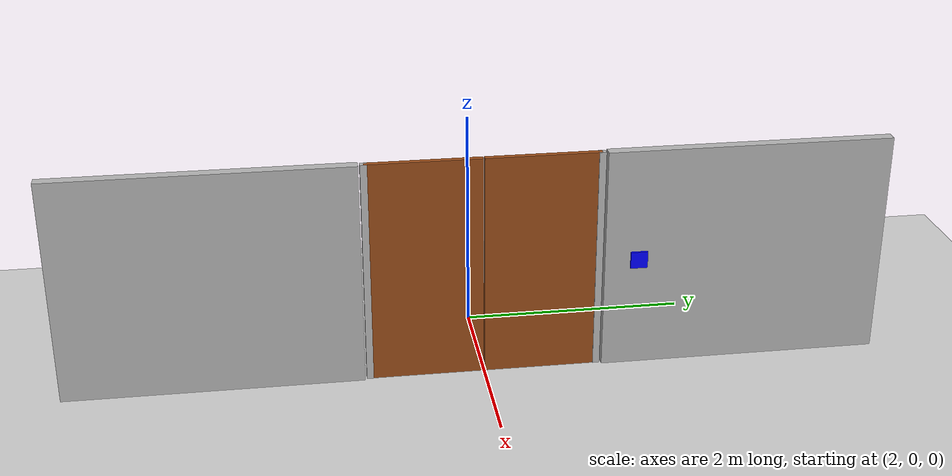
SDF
<sdf version="1.6">
 <world name="default">
  <plugin filename="ignition-gazebo-physics-system" name="ignition::gazebo::systems::Physics"/>
  <plugin filename="ignition-gazebo-user-commands-system" name="ignition::gazebo::systems::UserCommands"/>
  <plugin filename="ignition-gazebo-scene-broadcaster-system" name="ignition::gazebo::systems::SceneBroadcaster"/>
  <plugin filename="ignition-gazebo-sensors-system" name="ignition::gazebo::systems::Sensors"/>
  <plugin filename="ignition-gazebo-contact-system" name="ignition::gazebo::systems::Contact"/>
  <physics type="ode">
   <real_time_update_rate>1000.0</real_time_update_rate>
   <max_step_size>0.001</max_step_size>
   <ode><solver><type>quick</type><iters>50</iters></solver></ode>
  </physics>
  <light name="sun" type="directional">
   <pose>0 0 10 0 0 0</pose>
   <diffuse>0.8 0.8 0.8 1</diffuse>
   <direction>-0.5 0.1 -0.9</direction>
  </light>
  <model name="ground_plane">
   <static>true</static>
   <link name="link">
    <collision name="collision">
     <geometry><plane><normal>0 0 1</normal><size>20 20</size></plane></geometry>
    </collision>
    <visual name="visual">
     <geometry><plane><normal>0 0 1</normal><size>20 20</size></plane></geometry>
     <material><ambient>0.8 0.8 0.8 1</ambient><diffuse>0.8 0.8 0.8 1</diffuse></material>
    </visual>
   </link>
  </model>
  <model name="hallway_wall_left">
   <static>true</static>
   <pose>3.0 -2.35 1.0 0 0 0</pose>
   <link name="link">
    <collision name="col"><geometry><box><size>0.1 2.6 2.0</size></box></geometry></collision>
    <visual name="vis">
     <geometry><box><size>0.1 2.6 2.0</size></box></geometry>
     <material><ambient>0.5 0.5 0.5 1</ambient><diffuse>0.7 0.7 0.7 1</diffuse></material>
    </visual>
   </link>
  </model>
  <model name="hallway_wall_right">
   <static>true</static>
   <pose>3.0 2.3 1.0 0 0 0</pose>
   <link name="link">
    <collision name="col"><geometry><box><size>0.1 2.5 2.0</size></box></geometry></collision>
    <visual name="vis">
     <geometry><box><size>0.1 2.5 2.0</size></box></geometry>
     <material><ambient>0.5 0.5 0.5 1</ambient><diffuse>0.7 0.7 0.7 1</diffuse></material>
    </visual>
   </link>
  </model>
  <model name="handicap_door_right">
   <pose>3.0 -1.005 1.0 0 0 1.5708</pose>
   <link name="door_frame">
    <visual name="v"><geometry><box><size>0.06 0.06 2.0</size></box></geometry></visual>
   </link>
   <link name="door_leaf">
    <inertial><mass>1.0</mass><inertia><ixx>0.1</ixx><iyy>0.1</iyy><izz>0.1</izz></inertia></inertial>
    <collision name="leaf_col">
     <pose>0.5 0 0 0 0 0</pose>
     <geometry><box><size>1.0 0.05 2.0</size></box></geometry>
    </collision>
    <visual name="leaf_vis">
     <pose>0.5 0 0 0 0 0</pose>
     <geometry><box><size>1.0 0.05 2.0</size></box></geometry>
     <material><ambient>0.6 0.3 0.1 1</ambient><diffuse>0.6 0.3 0.1 1</diffuse></material>
    </visual>
   </link>
   <joint name="door_hinge" type="revolute">
    <parent>door_frame</parent>
    <child>door_leaf</child>
    <axis>
     <xyz>0 0 1</xyz>
     <limit><lower>-1.57</lower><upper>0</upper><velocity>0.6</velocity><effort>20</effort></limit>
     <dynamics><damping>5.0</damping><friction>0.1</friction></dynamics>
    </axis>
   </joint>
   <joint name="world_fix" type="fixed"><parent>world</parent><child>door_frame</child></joint>
   <plugin filename="ignition-gazebo-joint-state-publisher-system" name="ignition::gazebo::systems::JointStatePublisher"/>
   <plugin filename="ignition-gazebo-joint-position-controller-system" name="ignition::gazebo::systems::JointPositionController">
    <joint_name>door_hinge</joint_name>
    <topic>/model/handicap_door_right/door_cmd</topic>
    <p_gain>100</p_gain>
    <i_gain>1</i_gain>
    <d_gain>10</d_gain>
   </plugin>
  </model>
  <model name="handicap_left_left">
   <pose>3.0 1.005 1.0 0 0 1.5708</pose>
   <link name="door_frame">
    <visual name="v"><geometry><box><size>0.06 0.06 2.0</size></box></geometry></visual>
   </link>
   <link name="door_leaf">
    <inertial><mass>1.0</mass><inertia><ixx>0.1</ixx><iyy>0.1</iyy><izz>0.1</izz></inertia></inertial>
    <collision name="leaf_col">
     <pose>-0.5 0 0 0 0 0</pose>
     <geometry><box><size>1.0 0.05 2.0</size></box></geometry>
    </collision>
    <visual name="leaf_vis">
     <pose>-0.5 0 0 0 0 0</pose>
     <geometry><box><size>1.0 0.05 2.0</size></box></geometry>
     <material><ambient>0.6 0.3 0.1 1</ambient><diffuse>0.6 0.3 0.1 1</diffuse></material>
    </visual>
   </link>
   <joint name="door_hinge" type="revolute">
    <parent>door_frame</parent>
    <child>door_leaf</child>
    <axis>
     <xyz>0 0 1</xyz>
     <limit><lower>0.0</lower><upper>1.57</upper><velocity>0.6</velocity><effort>20</effort></limit>
     <dynamics><damping>5.0</damping><friction>0.1</friction></dynamics>
    </axis>
   </joint>
   <joint name="world_fix" type="fixed"><parent>world</parent><child>door_frame</child></joint>
   <plugin filename="ignition-gazebo-joint-state-publisher-system" name="ignition::gazebo::systems::JointStatePublisher"/>
   <plugin filename="ignition-gazebo-joint-position-controller-system" name="ignition::gazebo::systems::JointPositionController">
    <joint_name>door_hinge</joint_name>
    <topic>/model/handicap_door_left/door_cmd</topic>
    <p_gain>100</p_gain>
    <i_gain>1</i_gain>
    <d_gain>10</d_gain>
   </plugin>
  </model>
  <model name="ada_button">
   <static>true</static>
   <pose>2.94 -1.35 1.0 0 0 0</pose>
   <link name="button_link">
    <visual name="v">
     <geometry><box><size>0.02 0.15 0.15</size></box></geometry>
     <material><ambient>0 0 1 1</ambient><diffuse>0 0 1 1</diffuse></material>
    </visual>
    <collision name="button_collision">
     <pose>0.03 0 0 0 0 0</pose>
     <geometry><box><size>0.08 0.20 0.20</size></box></geometry>
     <surface><contact><collide_without_contact>true</collide_without_contact></contact></surface>
     <category_bitmask>0x02</category_bitmask>
    </collision>
    <sensor name="button_contact_sensor" type="contact">
     <contact><collision>button_collision</collision></contact>
     <update_rate>100</update_rate>
    </sensor>
   </link>
   <plugin filename="ignition-gazebo-touchplugin-system" name="ignition::gazebo::systems::TouchPlugin">
    <target>hsrb</target>
    <namespace>button_logic</namespace>
    <time>0.001</time>
    <enabled>true</enabled>
   </plugin>
  </model>
  <model name="ada_button_back">
   <static>true</static>
   <pose>3.06 1.35 1.0 0 0 0</pose>
   <link name="button_link">
    <visual name="v">
     <geometry><box><size>0.02 0.15 0.15</size></box></geometry>
     <material><ambient>0 0 1 1</ambient><diffuse>0 0 1 1</diffuse></material>
    </visual>
    <collision name="button_collision">
     <pose>-0.03 0 0 0 0 0</pose>
     <geometry><box><size>0.08 0.20 0.20</size></box></geometry>
     <surface><contact><collide_without_contact>true</collide_without_contact></contact></surface>
     <category_bitmask>0x02</category_bitmask>
    </collision>
    <sensor name="button_contact_sensor" type="contact">
     <contact><collision>button_collision</collision></contact>
     <update_rate>100</update_rate>
    </sensor>
   </link>
   <plugin filename="ignition-gazebo-touchplugin-system" name="ignition::gazebo::systems::TouchPlugin">
    <target>hsrb</target>
    <namespace>button_back_logic</namespace>
    <time>0.001</time>
    <enabled>true</enabled>
   </plugin>
  </model>
 </world>
</sdf>
